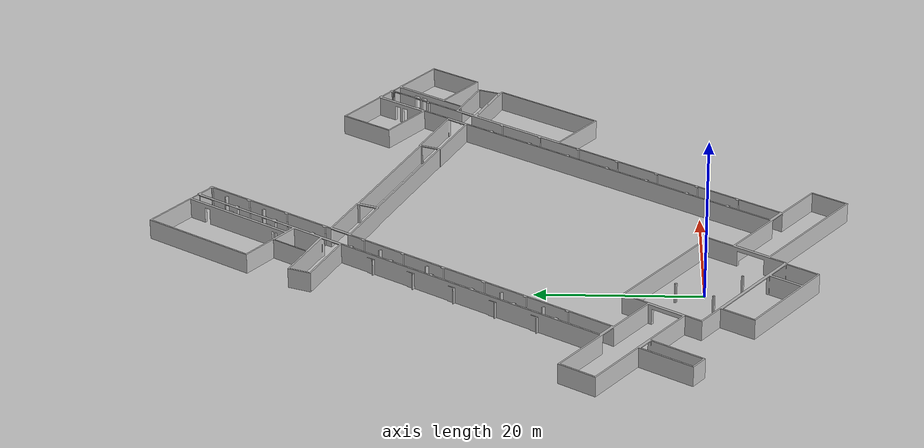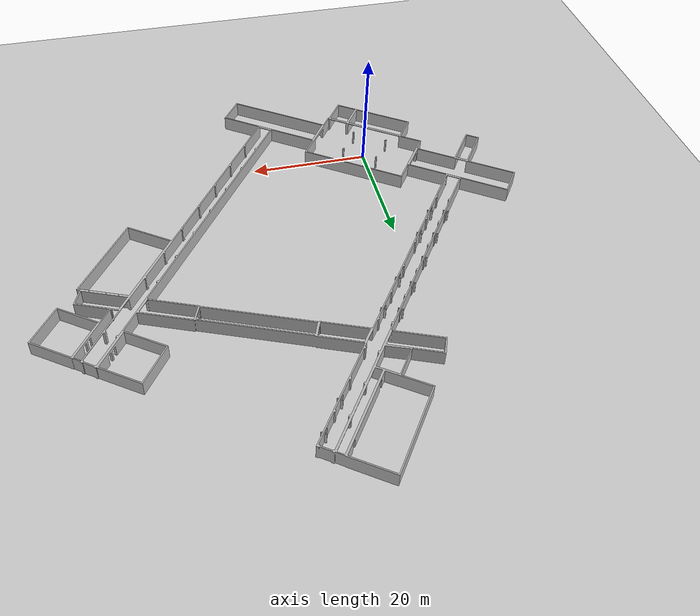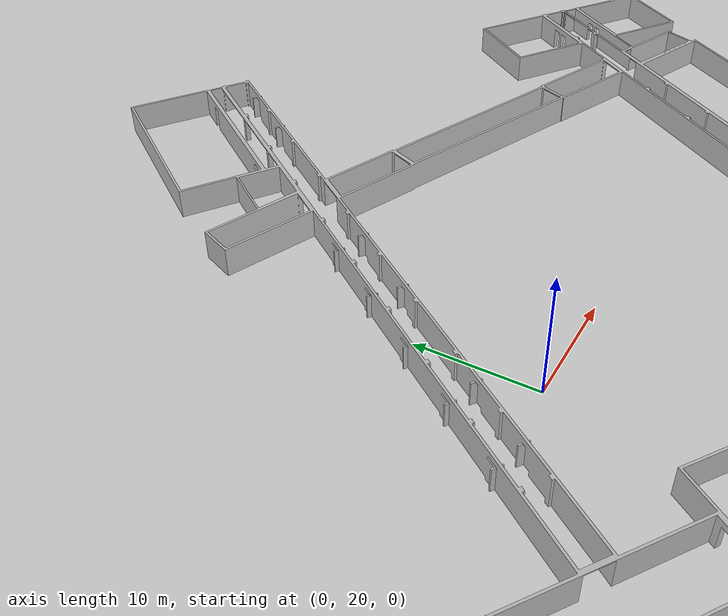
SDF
<?xml version='1.0' encoding='utf-8'?>
<sdf version="1.6">
  <world name="floorplan:icra_brsu_building_c_level_3">
    <gravity>0 0 -9.8</gravity>
    <physics default="0" name="default_physics" type="ode">
      <max_step_size>0.001</max_step_size>
      <real_time_factor>1</real_time_factor>
      <real_time_update_rate>1000</real_time_update_rate>
    </physics>
    <scene>
      <ambient>0.6 0.6 0.6 1</ambient>
      <background>0.4 0.4 0.4 1</background>
      <shadows>false</shadows>
    </scene>
    <include>
      <uri>model://sun</uri>
    </include>
    <include>
      <uri>model://ground_plane</uri>
      <pose>0 0 0 0 0 0</pose>
    </include>
    <include>
      <uri>model://icra_brsu_building_c_level_3</uri>
      <static>true</static>
      <pose>-0.0 0.0 0.0 0.0 0.0 0.0</pose>
    </include>

    <include>
      <name>door-instance-11</name>
      <uri>model://door</uri>
      <static>false</static>
      <pose>4.746325265688093 38.988634516642065 0.0 0.0 -0.0 -0.6108652381980157</pose>
      <plugin name="dynamic_joint_pluginss" filename="libdynamic_joint_plugin.so">
        <joint>door:joint-door-hinge</joint>
        <uri>/home/samuel/Documents/SESAME/dynamic-dsl/icra-models/scripts/output/keyframes_door_10.json</uri>
      </plugin>
    </include>

    <include>
      <name>door-instance-2</name>
      <uri>model://door</uri>
      <static>false</static>
      <pose>-3.0319662299526953 23.608638372011786 0.0 0.0 -0.0 2.5307274153917776</pose>
      <plugin name="dynamic_joint_pluginss" filename="libdynamic_joint_plugin.so">
        <joint>door:joint-door-hinge</joint>
        <uri>/home/samuel/Documents/SESAME/dynamic-dsl/icra-models/scripts/output/keyframes_door_1.json</uri>
      </plugin>
    </include>

    <include>
      <name>door-instance-8</name>
      <uri>model://door</uri>
      <static>false</static>
      <pose>-2.1365919705244423 29.158809985174152 0.0 0.0 -0.0 -0.6108652381980157</pose>

    </include>

    <include>
      <name>door-instance-10</name>
      <uri>model://door</uri>
      <static>false</static>
      <pose>-9.019509206736982 19.328985453706235 0.0 0.0 -0.0 -0.6108652381980157</pose>
      <plugin name="dynamic_joint_pluginss" filename="libdynamic_joint_plugin.so">
        <joint>door:joint-door-hinge</joint>
        <uri>/home/samuel/Documents/SESAME/dynamic-dsl/icra-models/scripts/output/keyframes_door_9.json</uri>
      </plugin>
    </include>

    <include>
      <name>door-instance-7</name>
      <uri>model://door</uri>
      <static>false</static>
      <pose>1.3048666475818287 34.07372225090811 0.0 0.0 -0.0 -0.6108652381980157</pose>
      <plugin name="dynamic_joint_pluginss" filename="libdynamic_joint_plugin.so">
        <joint>door:joint-door-hinge</joint>
        <uri>/home/samuel/Documents/SESAME/dynamic-dsl/icra-models/scripts/output/keyframes_door_6.json</uri>
      </plugin>
    </include>

    <include>
      <name>door-instance-3</name>
      <uri>model://door</uri>
      <static>false</static>
      <pose>3.277374569908798 32.61931085919071 0.0 0.0 -0.0 2.5307274153917776</pose>
      <plugin name="dynamic_joint_pluginss" filename="libdynamic_joint_plugin.so">
        <joint>door:joint-door-hinge</joint>
        <uri>/home/samuel/Documents/SESAME/dynamic-dsl/icra-models/scripts/output/keyframes_door_2.json</uri>
      </plugin>
    </include>

    <include>
      <name>door-instance-6</name>
      <uri>model://door</uri>
      <static>false</static>
      <pose>7.29240962436611 38.353375169213656 0.0 0.0 -0.0 2.5307274153917776</pose>
      <plugin name="dynamic_joint_pluginss" filename="libdynamic_joint_plugin.so">
        <joint>door:joint-door-hinge</joint>
        <uri>/home/samuel/Documents/SESAME/dynamic-dsl/icra-models/scripts/output/keyframes_door_5.json</uri>
      </plugin>
    </include>

    <include>
      <name>door-instance-4</name>
      <uri>model://door</uri>
      <static>false</static>
      <pose>17.731500765955133 53.261942375273335 0.0 0.0 -0.0 2.5307274153917776</pose>
      <plugin name="dynamic_joint_pluginss" filename="libdynamic_joint_plugin.so">
        <joint>door:joint-door-hinge</joint>
        <uri>/home/samuel/Documents/SESAME/dynamic-dsl/icra-models/scripts/output/keyframes_door_3.json</uri>
      </plugin>
    </include>

    <include>
      <name>door-instance-9</name>
      <uri>model://door</uri>
      <static>false</static>
      <pose>-5.578050588630709 24.243897719440195 0.0 0.0 -0.0 -0.6108652381980157</pose>
      <plugin name="dynamic_joint_pluginss" filename="libdynamic_joint_plugin.so">
        <joint>door:joint-door-hinge</joint>
        <uri>/home/samuel/Documents/SESAME/dynamic-dsl/icra-models/scripts/output/keyframes_door_8.json</uri>
      </plugin>
    </include>

    <include>
      <name>door-instance-5</name>
      <uri>model://door</uri>
      <static>false</static>
      <pose>21.1729593840614 58.176854641007296 0.0 0.0 -0.0 2.5307274153917776</pose>

    </include>

    <include>
      <name>door-instance-1</name>
      <uri>model://door</uri>
      <static>false</static>
      <pose>-6.473424848058967 18.69372610627782 0.0 0.0 -0.0 2.5307274153917776</pose>
      <plugin name="dynamic_joint_pluginss" filename="libdynamic_joint_plugin.so">
        <joint>door:joint-door-hinge</joint>
        <uri>/home/samuel/Documents/SESAME/dynamic-dsl/icra-models/scripts/output/keyframes_door_0.json</uri>
      </plugin>
    </include>

  </world>
</sdf>

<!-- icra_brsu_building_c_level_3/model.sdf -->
<sdf version="1.6">
  <model name="icra_brsu_building_c_level_3">
    <link name="link">
      <visual name="visual">
	    <geometry>
          <mesh>
            <uri>model://icra_brsu_building_c_level_3/meshes/icra_brsu_building_c_level_3.stl</uri>
          </mesh>
        </geometry>
      </visual>
      <collision name="collision">
        <geometry>
          <mesh>
            <uri>model://icra_brsu_building_c_level_3/meshes/icra_brsu_building_c_level_3.stl</uri>
          </mesh>
        </geometry>
      </collision>
</link>
  <static>1</static>
  </model>
</sdf>

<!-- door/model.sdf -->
<sdf version='1.6'>
  <model name='door'>
    <link name='link_0'>
         <visual name='visual'>
        <pose frame=''>0 0 1 0 -0 0</pose>
        <geometry>
          <box>
            <size>0.9 0.15 2</size>
          </box>
        </geometry>
          	<material>
          <script>
            <uri>model://door/materials/scripts</uri>
            <uri>model://door/materials/textures</uri>
            <name>door</name>
          </script>
        </material>
        <cast_shadows>1</cast_shadows>
        <transparency>0</transparency>
      </visual>
      <collision name='collision'>
        <laser_retro>0</laser_retro>
        <max_contacts>10</max_contacts>
        <pose frame=''>0 0 1 0 -0 0</pose>
        <geometry>
          <box>
            <size>0.9 0.15 2</size>
          </box>
        </geometry>

      </collision>
    </link>
    <static>1</static>
    <allow_auto_disable>1</allow_auto_disable>
  </model>
</sdf>
